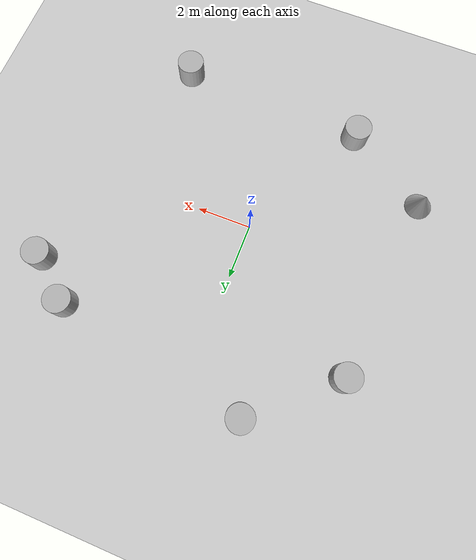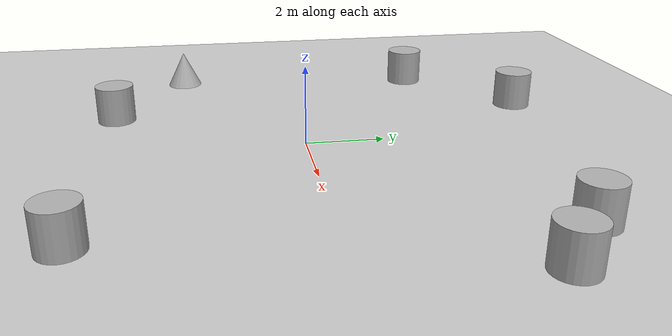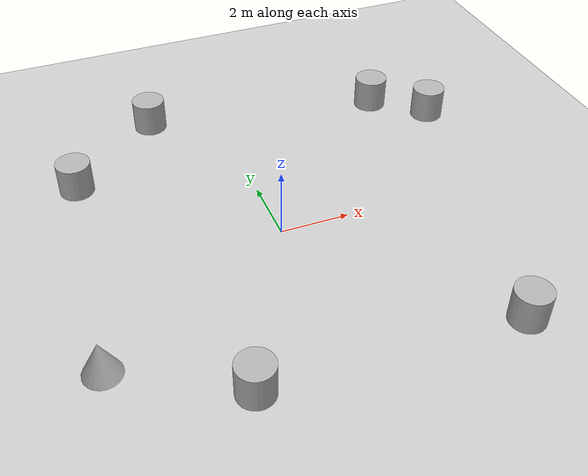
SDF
<sdf version="1.10">
 <world name="world_new">
  <physics name="1ms" type="ignored">
   <max_step_size>0.001</max_step_size>
   <real_time_factor>1</real_time_factor>
   <real_time_update_rate>1000</real_time_update_rate>
  </physics>
  <plugin name="gz::sim::systems::Physics" filename="gz-sim-physics-system"/>
  <plugin name="gz::sim::systems::UserCommands" filename="gz-sim-user-commands-system"/>
  <plugin name="gz::sim::systems::SceneBroadcaster" filename="gz-sim-scene-broadcaster-system"/>
  <plugin name="gz::sim::systems::Contact" filename="gz-sim-contact-system"/>
  <plugin filename="gz-sim-sensors-system" name="gz::sim::systems::Sensors">
   <render_engine>ogre</render_engine>
  </plugin>
  <gravity>0 0 -9.8000000000000007</gravity>
  <magnetic_field>5.5644999999999998e-06 2.2875799999999999e-05 -4.2388400000000002e-05</magnetic_field>
  <atmosphere type="adiabatic"/>
  <scene>
   <ambient>0.400000006 0.400000006 0.400000006 1</ambient>
   <background>0.699999988 0.699999988 0.699999988 1</background>
   <shadows>true</shadows>
  </scene>
  <model name="ground_plane">
   <static>true</static>
   <link name="link">
    <collision name="collision">
     <geometry><plane><normal>0 0 1</normal><size>100 100</size></plane></geometry>
    </collision>
    <visual name="visual">
     <geometry><plane><normal>0 0 1</normal><size>100 100</size></plane></geometry>
     <material>
      <ambient>0.800000012 0.800000012 0.800000012 1</ambient>
      <diffuse>0.800000012 0.800000012 0.800000012 1</diffuse>
      <specular>0.800000012 0.800000012 0.800000012 1</specular>
     </material>
    </visual>
    <inertial>
     <mass>1</mass>
     <inertia><ixx>1</ixx><ixy>0</ixy><ixz>0</ixz><iyy>1</iyy><iyz>0</iyz><izz>1</izz></inertia>
    </inertial>
   </link>
  </model>
  <model name="cylinder">
   <pose>-2.082935518730114 6.3332063797906315 0.5 0 0 0</pose>
   <link name="cylinder_link">
    <inertial>
     <inertia>
      <ixx>0.14580000000000001</ixx>
      <ixy>0</ixy>
      <ixz>0</ixz>
      <iyy>0.14580000000000001</iyy>
      <iyz>0</iyz>
      <izz>0.125</izz>
     </inertia>
     <mass>1</mass>
    </inertial>
    <collision name="cylinder_collision">
     <geometry><cylinder><radius>0.5</radius><length>1</length></cylinder></geometry>
    </collision>
    <visual name="cylinder_visual">
     <geometry><cylinder><radius>0.5</radius><length>1</length></cylinder></geometry>
     <material>
      <ambient>0.300000012 0.300000012 0.300000012 1</ambient>
      <diffuse>0.699999988 0.699999988 0.699999988 1</diffuse>
      <specular>1 1 1 1</specular>
     </material>
    </visual>
   </link>
   <static>false</static>
  </model>
  <model name="cylinder_0">
   <pose>5.1112275966161747 5.0319063346336854 0.5 0 0 0</pose>
   <link name="cylinder_link">
    <inertial>
     <inertia>
      <ixx>0.14580000000000001</ixx>
      <ixy>0</ixy>
      <ixz>0</ixz>
      <iyy>0.14580000000000001</iyy>
      <iyz>0</iyz>
      <izz>0.125</izz>
     </inertia>
     <mass>1</mass>
    </inertial>
    <collision name="cylinder_collision">
     <geometry><cylinder><radius>0.5</radius><length>1</length></cylinder></geometry>
    </collision>
    <visual name="cylinder_visual">
     <geometry><cylinder><radius>0.5</radius><length>1</length></cylinder></geometry>
     <material>
      <ambient>0.300000012 0.300000012 0.300000012 1</ambient>
      <diffuse>0.699999988 0.699999988 0.699999988 1</diffuse>
      <specular>1 1 1 1</specular>
     </material>
    </visual>
   </link>
   <static>false</static>
  </model>
  <model name="cylinder_1">
   <pose>6.5789079385932894 3.7926726176903647 0.5 0 0 0</pose>
   <link name="cylinder_link">
    <inertial>
     <inertia>
      <ixx>0.14580000000000001</ixx>
      <ixy>0</ixy>
      <ixz>0</ixz>
      <iyy>0.14580000000000001</iyy>
      <iyz>0</iyz>
      <izz>0.125</izz>
     </inertia>
     <mass>1</mass>
    </inertial>
    <collision name="cylinder_collision">
     <geometry><cylinder><radius>0.5</radius><length>1</length></cylinder></geometry>
    </collision>
    <visual name="cylinder_visual">
     <geometry><cylinder><radius>0.5</radius><length>1</length></cylinder></geometry>
     <material>
      <ambient>0.300000012 0.300000012 0.300000012 1</ambient>
      <diffuse>0.699999988 0.699999988 0.699999988 1</diffuse>
      <specular>1 1 1 1</specular>
     </material>
    </visual>
   </link>
   <static>false</static>
  </model>
  <model name="cylinder_2">
   <pose>-2.4960851233236374 -4.8622768971620207 0.5 0 0 0</pose>
   <link name="cylinder_link">
    <inertial>
     <inertia>
      <ixx>0.14580000000000001</ixx>
      <ixy>0</ixy>
      <ixz>0</ixz>
      <iyy>0.14580000000000001</iyy>
      <iyz>0</iyz>
      <izz>0.125</izz>
     </inertia>
     <mass>1</mass>
    </inertial>
    <collision name="cylinder_collision">
     <geometry><cylinder><radius>0.5</radius><length>1</length></cylinder></geometry>
    </collision>
    <visual name="cylinder_visual">
     <geometry><cylinder><radius>0.5</radius><length>1</length></cylinder></geometry>
     <material>
      <ambient>0.300000012 0.300000012 0.300000012 1</ambient>
      <diffuse>0.699999988 0.699999988 0.699999988 1</diffuse>
      <specular>1 1 1 1</specular>
     </material>
    </visual>
   </link>
   <static>false</static>
  </model>
  <model name="cylinder_3">
   <pose>4.4513184556110517 -5.1779492103664158 0.5 0 0 0</pose>
   <link name="cylinder_link">
    <inertial>
     <inertia>
      <ixx>0.14580000000000001</ixx>
      <ixy>0</ixy>
      <ixz>0</ixz>
      <iyy>0.14580000000000001</iyy>
      <iyz>0</iyz>
      <izz>0.125</izz>
     </inertia>
     <mass>1</mass>
    </inertial>
    <collision name="cylinder_collision">
     <geometry><cylinder><radius>0.5</radius><length>1</length></cylinder></geometry>
    </collision>
    <visual name="cylinder_visual">
     <geometry><cylinder><radius>0.5</radius><length>1</length></cylinder></geometry>
     <material>
      <ambient>0.300000012 0.300000012 0.300000012 1</ambient>
      <diffuse>0.699999988 0.699999988 0.699999988 1</diffuse>
      <specular>1 1 1 1</specular>
     </material>
    </visual>
   </link>
   <static>false</static>
  </model>
  <model name="cylinder_4">
   <pose>-4.9011046855525713 3.874939175604208 0.5 0 0 0</pose>
   <link name="cylinder_link">
    <inertial>
     <inertia>
      <ixx>0.14580000000000001</ixx>
      <ixy>0</ixy>
      <ixz>0</ixz>
      <iyy>0.14580000000000001</iyy>
      <iyz>0</iyz>
      <izz>0.125</izz>
     </inertia>
     <mass>1</mass>
    </inertial>
    <collision name="cylinder_collision">
     <geometry><cylinder><radius>0.5</radius><length>1</length></cylinder></geometry>
    </collision>
    <visual name="cylinder_visual">
     <geometry><cylinder><radius>0.5</radius><length>1</length></cylinder></geometry>
     <material>
      <ambient>0.300000012 0.300000012 0.300000012 1</ambient>
      <diffuse>0.699999988 0.699999988 0.699999988 1</diffuse>
      <specular>1 1 1 1</specular>
     </material>
    </visual>
   </link>
   <static>false</static>
  </model>
  <model name="cone">
   <pose>-5.5930964438997481 -3.0717205211321867 0.5 0 0 0</pose>
   <link name="cone_link">
    <inertial>
     <inertia>
      <ixx>0.074999999999999997</ixx>
      <ixy>0</ixy>
      <ixz>0</ixz>
      <iyy>0.074999999999999997</iyy>
      <iyz>0</iyz>
      <izz>0.074999999999999997</izz>
     </inertia>
     <mass>1</mass>
    </inertial>
    <collision name="cone_collision">
     <geometry><cone><radius>0.5</radius><length>1</length></cone></geometry>
    </collision>
    <visual name="cone_visual">
     <geometry><cone><radius>0.5</radius><length>1</length></cone></geometry>
     <material>
      <ambient>0.300000012 0.300000012 0.300000012 1</ambient>
      <diffuse>0.699999988 0.699999988 0.699999988 1</diffuse>
      <specular>1 1 1 1</specular>
     </material>
    </visual>
   </link>
   <static>false</static>
  </model>
  <light name="sun" type="directional">
   <pose>0 0 10 0 0 0</pose>
   <intensity>1</intensity>
   <direction>-0.5 0.10000000000000001 -0.90000000000000002</direction>
   <diffuse>0.800000012 0.800000012 0.800000012 1</diffuse>
   <specular>0.200000003 0.200000003 0.200000003 1</specular>
   <attenuation>
    <range>1000</range>
    <linear>0.01</linear>
    <constant>0.90000000000000002</constant>
    <quadratic>0.001</quadratic>
   </attenuation>
   <spot><inner_angle>0</inner_angle><outer_angle>0</outer_angle><falloff>0</falloff></spot>
  </light>
 </world>
</sdf>
